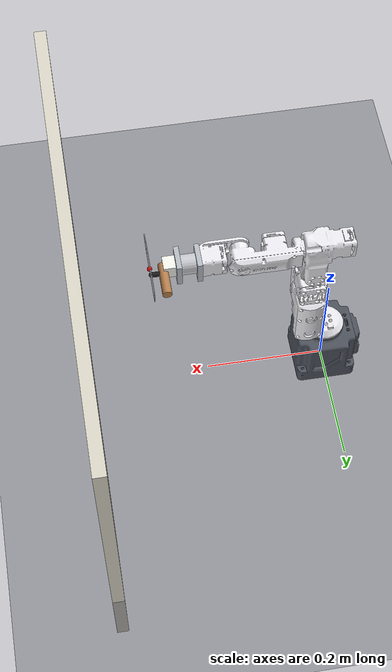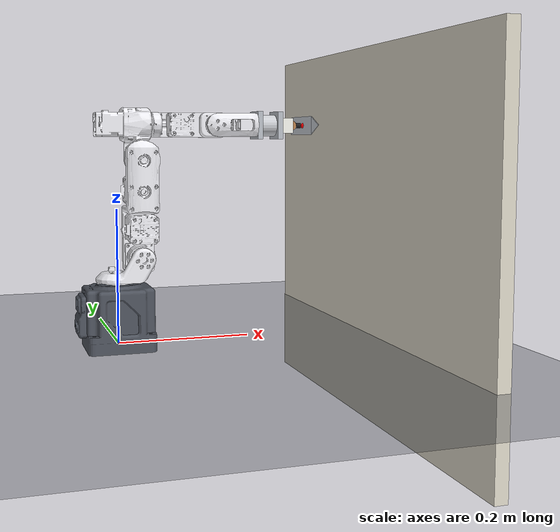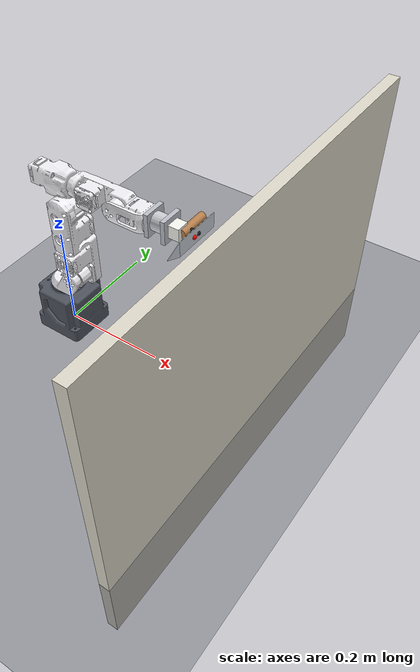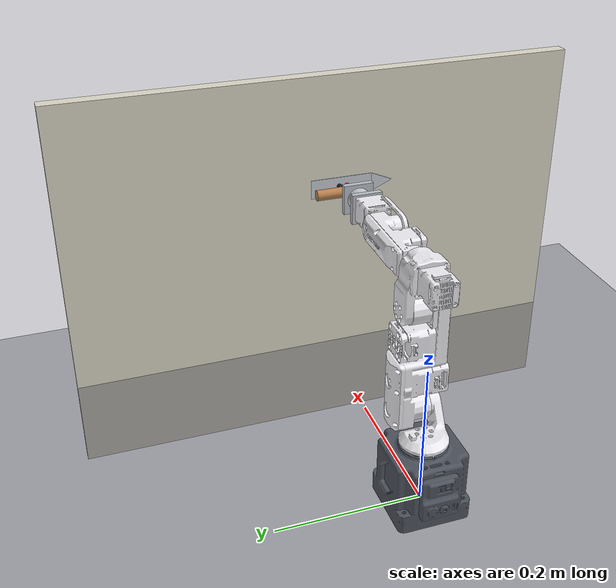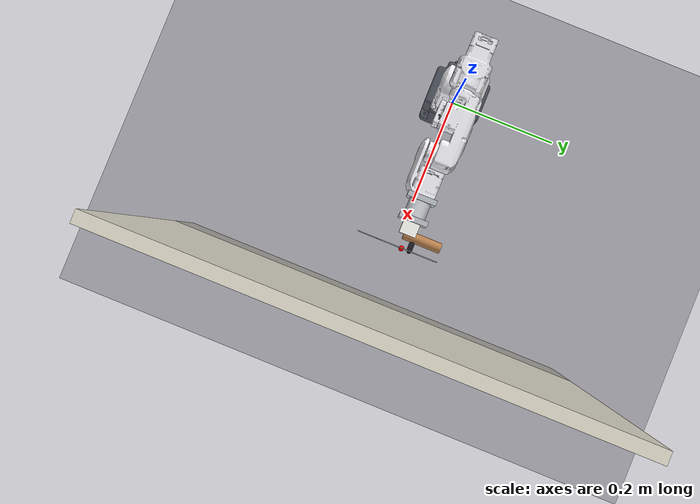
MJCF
<mujoco model="dummy_wall_trowel_SIM_ASSUMPTIONS_NOT_CALIBRATED">
  <!-- 由 tools/modeling/build_dummy_v2.py 生成，请勿手改。运动学 = V2 固件 DH；质量/惯量 = CAD 体积×估计密度 + 资料质量；执行器 = 资料额定值推算。均未经实机辨识。 -->
  <compiler angle="radian" meshdir="../../../../models/meshes_v2/" boundinertia="1e-07"/>

  <option integrator="implicitfast"/>

  <visual>
    <global offwidth="960" offheight="720"/>
  </visual>

  <default>
    <geom contype="0" conaffinity="0"/>
  </default>

  <asset>
    <mesh name="base_link" file="base_link.stl" scale="0.001 0.001 0.001" inertia="shell"/>
    <mesh name="link1" file="link1.stl" scale="0.001 0.001 0.001" inertia="shell"/>
    <mesh name="link2" file="link2.stl" scale="0.001 0.001 0.001" inertia="shell"/>
    <mesh name="link3" file="link3.stl" scale="0.001 0.001 0.001" inertia="shell"/>
    <mesh name="link4" file="link4.stl" scale="0.001 0.001 0.001" inertia="shell"/>
    <mesh name="link5" file="link5.stl" scale="0.001 0.001 0.001" inertia="shell"/>
    <mesh name="link6" file="link6.stl" scale="0.001 0.001 0.001" inertia="shell"/>
    <mesh name="trowel_tip" vertex="0.0371429 0 -0.01375 0.0371429 0 0.01375 0.0371429 0.001 -0.01375 0.0371429 0.001 0.01375 0.0671429 0 -0.0005 0.0671429 0 0.0005 0.0671429 0.001 -0.0005 0.0671429 0.001 0.0005"/>
  </asset>

  <worldbody>
    <geom name="floor" size="1 1 0.01" pos="0 0 -0.0075" type="plane" rgba="0.18 0.2 0.24 1"/>
    <camera name="d435" quat="-0.376113 -0.227088 0.464312 0.769015" pos="-0.05 0.35 0.45" fovy="58"/>
    <light pos="0.3 -0.6 1.2" dir="-0.17609 0.440225 -0.880451" diffuse="0.8 0.8 0.8"/>
    <body name="base_link" gravcomp="1">
      <inertial pos="-0.000831234 0.000101811 0.0463087" quat="0.729165 0.122609 0.113131 0.663692" mass="0.872292" diaginertia="0.0010581 0.000994058 0.000934899"/>
      <geom name="base_link_visual" type="mesh" group="1" rgba="0.3 0.32 0.36 1" density="0" mesh="base_link"/>
      <body name="link1" gravcomp="1">
        <inertial pos="0.0168766 -0.00579915 0.105385" quat="0.601902 0.335085 0.143873 0.710446" mass="0.329271" diaginertia="0.000298153 0.000296753 5.29397e-05"/>
        <joint name="Joint1" range="-2.96706 2.96706" actuatorfrcrange="-8.3 8.3" armature="0.0085" damping="0.3"/>
        <geom name="link1_visual" type="mesh" group="1" rgba="0.93 0.93 0.95 1" density="0" mesh="link1"/>
        <body name="link2" pos="0.035 0 0.1265" gravcomp="1">
          <inertial pos="-1.90944e-05 -0.000875645 0.0716854" quat="0.998845 0.0479774 0.000122474 0.00257655" mass="1.23235" diaginertia="0.00419905 0.00417321 0.000428951"/>
          <joint name="Joint2" range="-1.309 1.5708" actuatorfrcrange="-8.3 8.3" armature="0.0135" damping="0.3" axis="0 1 0"/>
          <geom name="link2_visual" type="mesh" group="1" rgba="0.93 0.93 0.95 1" density="0" mesh="link2"/>
          <body name="link3" pos="0 0 0.146" gravcomp="1">
            <inertial pos="-0.0150739 0.00252776 0.038862" quat="0.698335 -0.0762693 -0.226163 0.674805" mass="0.625897" diaginertia="0.000608187 0.000546193 0.000207754"/>
            <joint name="Joint3" range="-1.5708 1.5708" actuatorfrcrange="-8.3 8.3" armature="0.0085" damping="0.3" axis="0 1 0"/>
            <geom name="link3_visual" type="mesh" group="1" rgba="0.93 0.93 0.95 1" density="0" mesh="link3"/>
            <body name="link4" pos="0 0 0.052" gravcomp="1">
              <inertial pos="0.0623124 0.000673193 0.000206517" quat="-0.00704575 0.707107 0.00755256 0.707031" mass="0.469893" diaginertia="0.00101398 0.00100983 9.00411e-05"/>
              <joint name="Joint4" range="-3.14159 3.14159" actuatorfrcrange="-6 6" armature="0.00275" damping="0.3" axis="1 0 0"/>
              <geom name="link4_visual" type="mesh" group="1" rgba="0.93 0.93 0.95 1" density="0" mesh="link4"/>
              <body name="link5" pos="0.117 0 0" gravcomp="1">
                <inertial pos="0.0260004 -0.00643627 0.000227449" quat="-0.237688 0.705385 -0.0477418 0.666076" mass="0.197877" diaginertia="0.000132156 0.00013144 3.28586e-05"/>
                <joint name="Joint5" range="-1.74533 2.0944" actuatorfrcrange="-3.3 3.3" armature="0.0015" damping="0.3" axis="0 1 0"/>
                <geom name="link5_visual" type="mesh" group="1" rgba="0.93 0.93 0.95 1" density="0" mesh="link5"/>
                <geom name="j6_reducer_base" size="0.004 0.021 0.021" pos="0.06441 0 0" type="box" rgba="0.72 0.74 0.77 1" mass="0"/>
                <geom name="j6_reducer_body" size="0.016 0.012" pos="0.08041 0 0" quat="0.707107 0 -0.707107 0" type="cylinder" rgba="0.8 0.81 0.83 1" mass="0"/>
                <body name="link6" gravcomp="1">
                  <inertial pos="0.0649063 0 0" quat="0.5 0.5 0.5 0.5" mass="0.00262028" diaginertia="1e-07 1e-07 1e-07"/>
                  <joint name="Joint6" range="-12.5664 12.5664" actuatorfrcrange="-0.07 0.07" armature="6e-07" damping="0.3" axis="1 0 0"/>
                  <geom name="link6_visual" type="mesh" group="1" rgba="0.75 0.75 0.78 1" density="0" mesh="link6"/>
                  <site name="shaft_tip" size="0.003" pos="0.07341 0 0" rgba="1 0.5 0 1"/>
                  <site name="fw_end" size="0.004" pos="0.0755 0 0" quat="0.707107 0 0.707107 0" rgba="0 0.8 0.2 1"/>
                  <body name="tool_mount" pos="0.10041 0 0" quat="0.707107 0 0 -0.707107" gravcomp="1">
                    <geom name="j6_output_flange" size="0.021 0.004 0.021" pos="0 -0.004 0" type="box" rgba="0.72 0.74 0.77 1" mass="0.03"/>
                    <body name="trowel" gravcomp="1">
                      <geom name="holder_geom" size="0.012 0.00975 0.0115" pos="0 0.00975 0" type="box" rgba="0.96 0.96 0.93 1" mass="0.03"/>
                      <site name="load_cell" size="0.004" rgba="0.2 0.6 1 1"/>
                      <body name="trowel_body" gravcomp="1">
                        <geom name="handle_geom" size="0.0075 0.028" pos="-0.0233571 0.0195 0" quat="0.707107 0 0.707107 0" type="cylinder" rgba="0.72 0.5 0.3 1" mass="0.015"/>
                        <geom name="neck_geom" size="0.004 0.007" pos="-0.0113571 0.032 0" quat="0.707107 0.707107 0 0" type="capsule" rgba="0.12 0.12 0.13 1" mass="0.003"/>
                        <body name="blade" pos="0 0.039 0" gravcomp="1">
                          <geom name="blade_geom" size="0.045 0.0005 0.01375" pos="-0.00785714 0.0005 0" type="box" contype="2" friction="0.6" solref="0.004" solimp="0.95 0.99" rgba="0.78 0.8 0.83 1" mass="0.0357"/>
                          <geom name="blade_tip_geom" type="mesh" contype="2" friction="0.6" solref="0.004" solimp="0.95 0.99" rgba="0.78 0.8 0.83 1" mass="0.0063" mesh="trowel_tip"/>
                          <site name="tcp" size="0.004" pos="0 0.001 0" rgba="1 0 0 1"/>
                          <site name="blade_site" size="0.003" pos="0 0.0005 0" rgba="0 0 0 0"/>
                        </body>
                      </body>
                    </body>
                  </body>
                </body>
              </body>
            </body>
          </body>
        </body>
      </body>
    </body>
    <body name="wall" pos="0.41 0 0.15" quat="0.5 0.5 0.5 0.5">
      <geom name="wall_geom" size="0.4 0.3 0.01" type="box" conaffinity="2" friction="0.6" rgba="0.86 0.84 0.78 1"/>
      <site name="wall_origin" size="0.003" pos="0 0 -0.01" rgba="0 0 0 0"/>
    </body>
  </worldbody>

  <actuator>
    <general name="servo1" joint="Joint1" ctrlrange="-2.96706 2.96706" forcerange="-8.3 8.3" biastype="affine" gainprm="35" biasprm="0 -35 -4"/>
    <general name="servo2" joint="Joint2" ctrlrange="-1.309 1.5708" forcerange="-8.3 8.3" biastype="affine" gainprm="35" biasprm="0 -35 -4"/>
    <general name="servo3" joint="Joint3" ctrlrange="-1.5708 1.5708" forcerange="-8.3 8.3" biastype="affine" gainprm="35" biasprm="0 -35 -4"/>
    <general name="servo4" joint="Joint4" ctrlrange="-3.14159 3.14159" forcerange="-6 6" biastype="affine" gainprm="35" biasprm="0 -35 -4"/>
    <general name="servo5" joint="Joint5" ctrlrange="-1.74533 2.0944" forcerange="-3.3 3.3" biastype="affine" gainprm="35" biasprm="0 -35 -4"/>
    <general name="servo6" joint="Joint6" ctrlrange="-12.5664 12.5664" forcerange="-0.07 0.07" biastype="affine" gainprm="35" biasprm="0 -35 -4"/>
  </actuator>

  <sensor>
    <force site="load_cell" name="load_cell"/>
    <force site="blade_site" name="blade_force"/>
  </sensor>
</mujoco>
